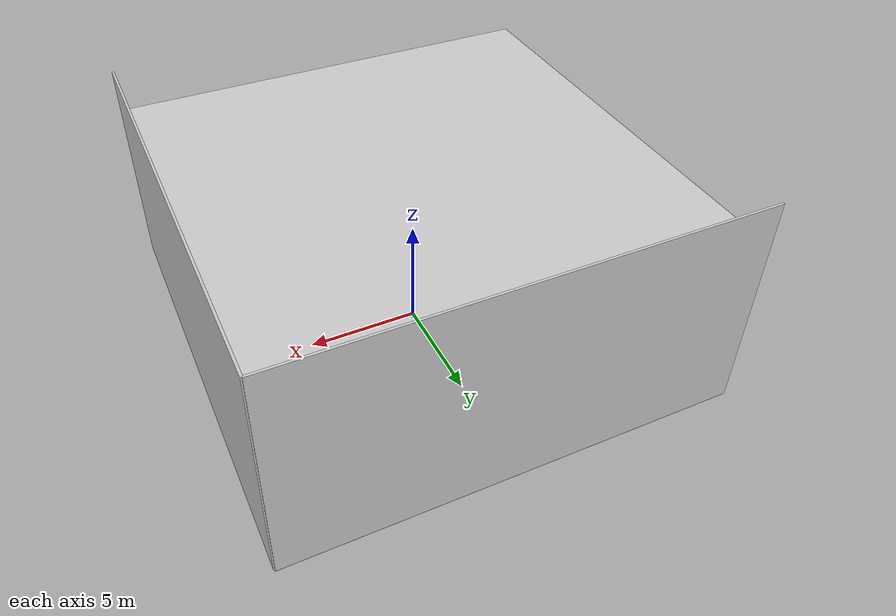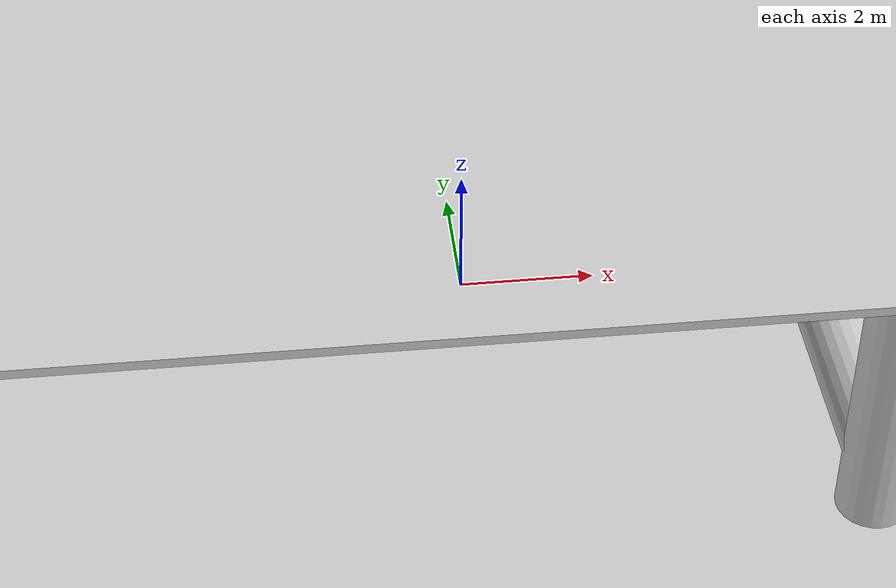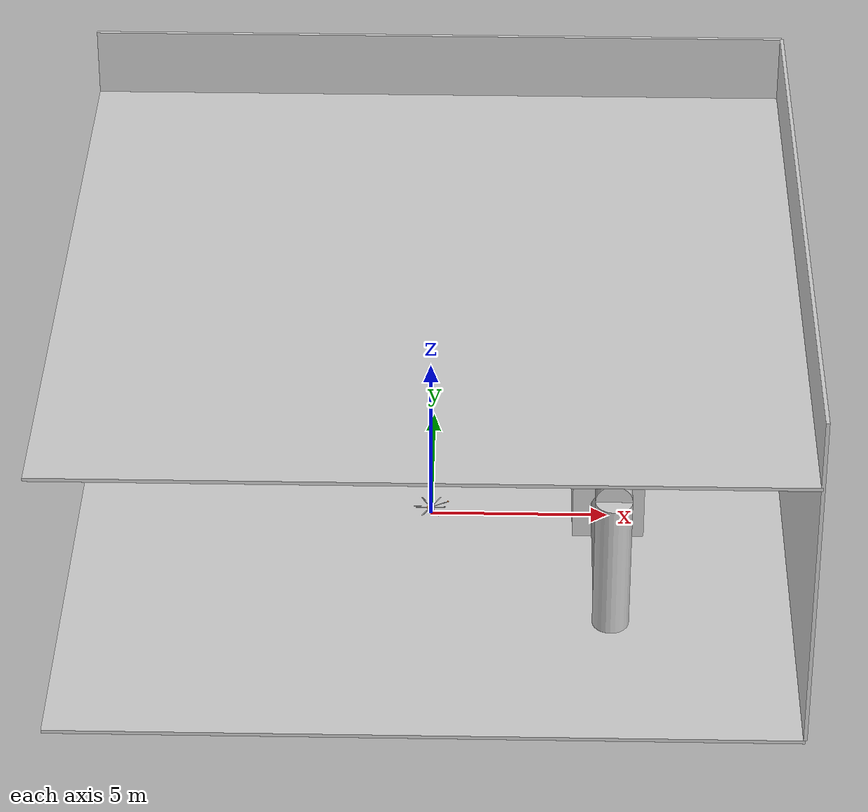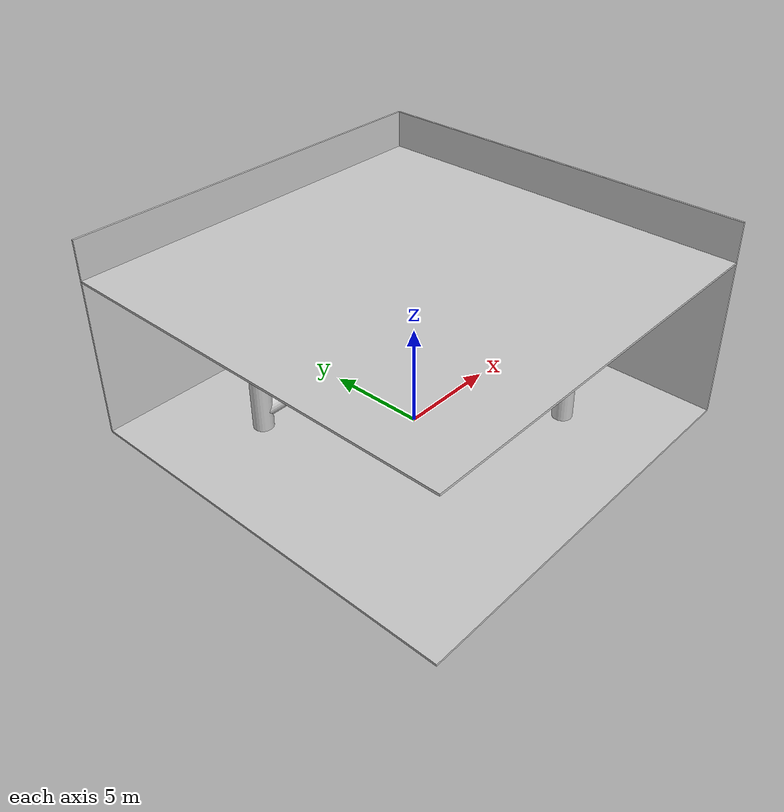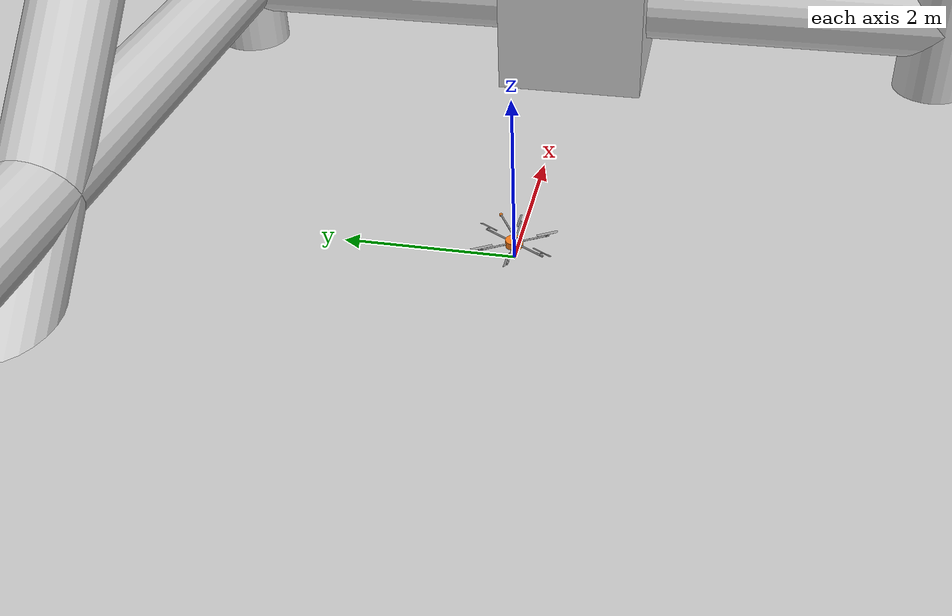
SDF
<?xml version="1.0"?>
<sdf version="1.5">
<world name="mrsim">
    <plugin filename="gz-sim-physics-system" name="gz::sim::systems::Physics"> </plugin>
    <plugin filename="gz-sim-scene-broadcaster-system" name="gz::sim::systems::SceneBroadcaster"> </plugin>
    <plugin filename="gz-sim-sensors-system" name="gz::sim::systems::Sensors">
        <render_engine>ogre2</render_engine>
    </plugin>
    <plugin filename="libgz-sim-imu-system" name="gz::sim::systems::Imu" />

    <physics type='ode'>
        <max_step_size>0.002000</max_step_size>
        <real_time_factor>1.000000</real_time_factor>
        <real_time_update_rate>500.000000</real_time_update_rate>
        <gravity>0 0 -9.81</gravity>
        <magnetic_field>23.816e-6 -0.41e-6 -39.829e-6</magnetic_field>
    </physics>

    <light type="directional" name="sun">
        <cast_shadows>false</cast_shadows>
        <pose>0 0 9.5 0 0 0</pose>
        <diffuse>0.8 0.8 0.8 1</diffuse>
        <specular>0.2 0.2 0.2 1</specular>
        <attenuation>
        <range>1000</range>
        <constant>0.9</constant>
        <linear>0.01</linear>
        <quadratic>0.001</quadratic>
        </attenuation>
        <direction>-0.5 0.1 -0.9</direction>
    </light>

    <model name="ground_plane">
        <static>true</static>
        <link name="link">
            <pose>0 0 -0.05 0 0 0</pose>
            <collision name="collision">
                <geometry>
                    <box>
                        <size>20 20 0.1</size>
                    </box>
                </geometry>
            </collision>
            <visual name="visual">
                <geometry>
                    <box>
                        <size>20 20 0.1</size>
                    </box>
                </geometry>
                <material>
                    <ambient>0.8 0.8 0.8 1</ambient>
                    <diffuse>0.8 0.8 0.8 1</diffuse>
                    <specular>0.8 0.8 0.8 1</specular>
                </material>
            </visual>
        </link>
    </model>

    <model name="textures">
        <static>true</static>
        <link name="wall_x">
            <pose>10 0 5 0 0 1.57</pose>
            <collision name="collision">
                <geometry>
                    <box>
                        <size>20 0.1 10.0</size>
                    </box>
                </geometry>
            </collision>
            <visual name="visual">
                <geometry>
                    <box>
                        <size>20 0.1 10.0</size>
                    </box>
                </geometry>
                <material>
                    <ambient>0.8 0.8 0.8 1</ambient>
                    <diffuse>0.8 0.8 0.8 1</diffuse>
                    <specular>0.8 0.8 0.8 1</specular>
                </material>
            </visual>
        </link>
        <link name="wall_y">
            <pose>0 10 5 0 0 0</pose>
            <collision name="collision">
                <geometry>
                    <box>
                        <size>20 0.1 10.0</size>
                    </box>
                </geometry>
            </collision>
            <visual name="visual">
                <geometry>
                    <box>
                        <size>20 0.1 10.0</size>
                    </box>
                </geometry>
                <material>
                    <ambient>0.8 0.8 0.8 1</ambient>
                    <diffuse>0.8 0.8 0.8 1</diffuse>
                    <specular>0.8 0.8 0.8 1</specular>
                </material>
            </visual>
        </link>
        <link name="roof">
            <pose>0 0 8 0 0 0</pose>
            <collision name="collision">
                <geometry>
                    <box>
                        <size>20 20 0.1</size>
                    </box>
                </geometry>
            </collision>
            <visual name="visual">
                <geometry>
                    <box>
                        <size>20 20 0.1</size>
                    </box>
                </geometry>
                <material>
                    <ambient>0.8 0.8 0.8 1</ambient>
                    <diffuse>0.8 0.8 0.8 1</diffuse>
                    <specular>0.8 0.8 0.8 1</specular>
                </material>
            </visual>
        </link>
        <link name="tpillar0">
            <pose>0 5 2 0 0.79 0</pose>
            <collision name="collision">
                <geometry>
                    <cylinder><radius>0.5</radius><length>10</length></cylinder>
                </geometry>
            </collision>
            <visual name="visual">
                <geometry>
                    <cylinder><radius>0.5</radius><length>10</length></cylinder>
                </geometry>
                <material>
                    <ambient>0.8 0.8 0.8 1</ambient>
                    <diffuse>0.8 0.8 0.8 1</diffuse>
                    <specular>0.8 0.8 0.8 1</specular>
                </material>
            </visual>
        </link>
        <link name="hpillar1">
            <pose>0 5 1 0 1.57 0</pose>
            <collision name="collision">
                <geometry>
                    <cylinder><radius>0.5</radius><length>10</length></cylinder>
                </geometry>
            </collision>
            <visual name="visual">
                <geometry>
                    <cylinder><radius>0.5</radius><length>10</length></cylinder>
                </geometry>
                <material>
                    <ambient>0.8 0.8 0.8 1</ambient>
                    <diffuse>0.8 0.8 0.8 1</diffuse>
                    <specular>0.8 0.8 0.8 1</specular>
                </material>
            </visual>
        </link>
        <link name="hpillar2">
            <pose>5 0 1 1.57 0 0</pose>
            <collision name="collision">
                <geometry>
                    <cylinder><radius>0.5</radius><length>10</length></cylinder>
                </geometry>
            </collision>
            <visual name="visual">
                <geometry>
                    <cylinder><radius>0.5</radius><length>10</length></cylinder>
                </geometry>
                <material>
                    <ambient>0.8 0.8 0.8 1</ambient>
                    <diffuse>0.8 0.8 0.8 1</diffuse>
                    <specular>0.8 0.8 0.8 1</specular>
                </material>
            </visual>
        </link>
        <link name="hpillar3">
            <pose>5 0 4 1.57 0 0</pose>
            <collision name="collision">
                <geometry>
                    <cylinder><radius>0.5</radius><length>10</length></cylinder>
                </geometry>
            </collision>
            <visual name="visual">
                <geometry>
                    <cylinder><radius>0.5</radius><length>10</length></cylinder>
                </geometry>
                <material>
                    <ambient>0.8 0.8 0.8 1</ambient>
                    <diffuse>0.8 0.8 0.8 1</diffuse>
                    <specular>0.8 0.8 0.8 1</specular>
                </material>
            </visual>
        </link>
        <link name="pillar1">
            <pose>5 5 2 0 0 0</pose>
            <collision name="collision">
                <geometry>
                    <cylinder><radius>0.5</radius><length>4</length></cylinder>
                </geometry>
            </collision>
            <visual name="visual">
                <geometry>
                    <cylinder><radius>0.5</radius><length>4</length></cylinder>
                </geometry>
                <material>
                    <ambient>0.8 0.8 0.8 1</ambient>
                    <diffuse>0.8 0.8 0.8 1</diffuse>
                    <specular>0.8 0.8 0.8 1</specular>
                </material>
            </visual>
        </link>
        <link name="pillar2">
            <pose>-5 5 3 0 0 0</pose>
            <collision name="collision">
                <geometry>
                    <cylinder><radius>0.5</radius><length>6</length></cylinder>
                </geometry>
            </collision>
            <visual name="visual">
                <geometry>
                    <cylinder><radius>0.5</radius><length>6</length></cylinder>
                </geometry>
                <material>
                    <ambient>0.8 0.8 0.8 1</ambient>
                    <diffuse>0.8 0.8 0.8 1</diffuse>
                    <specular>0.8 0.8 0.8 1</specular>
                </material>
            </visual>
        </link>
        <link name="pillar3">
            <pose>5 -5 2 0 0 0</pose>
            <collision name="collision">
                <geometry>
                    <cylinder><radius>0.5</radius><length>4</length></cylinder>
                </geometry>
            </collision>
            <visual name="visual">
                <geometry>
                    <cylinder><radius>0.5</radius><length>4</length></cylinder>
                </geometry>
                <material>
                    <ambient>0.8 0.8 0.8 1</ambient>
                    <diffuse>0.8 0.8 0.8 1</diffuse>
                    <specular>0.8 0.8 0.8 1</specular>
                </material>
            </visual>
        </link>
    </model>

    <model name="object">
        <link name="base">
                <pose>5 0 1 0 0 0</pose>
                <collision name="collision">
                    <geometry>
                        <box>
                            <size>2 2 2</size>
                        </box>
                    </geometry>
                </collision>
                <visual name="visual">
                    <geometry>
                        <box>
                            <size>2 2 2</size>
                        </box>
                        </geometry>
                    <material>
                        <ambient>0.8 0.8 0.8 1</ambient>
                        <diffuse>0.8 0.8 0.8 1</diffuse>
                        <specular>0.8 0.8 0.8 1</specular>
                    </material>
                </visual>
            </link>
    </model>

    <model name="TX">
        <pose>0 0 0.2 0 0 0</pose>
        <include>
            <uri>model://mrsim-tilthex</uri>
            <name>tx</name>
        </include>
        <include>
            <pose>0 0 0.075 0 0 0</pose>
            <uri>model://livox-mid360</uri>
            <name>livox</name>
        </include>
        <joint name="lidar_joint" type="fixed">
            <parent>tx::base</parent>
            <child>livox::base</child>
        </joint>
        <include>
            <pose>0.05 0 0.03 0 0 0.5236</pose>
            <uri>model://tilthex-ee</uri>
            <name>ee</name>
        </include>
        <joint name="ee_joint" type="fixed">
            <parent>tx::base</parent>
            <child>ee::base</child>
        </joint>
    </model>

    <plugin name="optitrack" filename="optitrack-gazebo-2.0.so">
        <hz>1000</hz>
        <port>1509</port>
        <publish>
            <link>TX::livox::base</link>
            <name>TX</name>
        </publish>
    </plugin>
</world>
</sdf>

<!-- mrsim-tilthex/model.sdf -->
<sdf version="1.5">
<model name="mrsim-tilthex">
    <link name="base">
        <inertial>
            <mass>2.5</mass>
            <inertia>
                <ixx>0.0115</ixx><ixy>0</ixy><ixz>0</ixz>
                <iyy>0.0115</iyy><iyz>0</iyz>
                <izz>0.0194</izz>
            </inertia>
        </inertial>

        <collision name="body">
            <geometry>
                <cylinder><radius>0.1</radius><length>0.08</length></cylinder>
            </geometry>
        </collision>

        <!-- three spheres to make contact stable -->
        <collision name="land_1">
            <pose>0.067 0 0 0 0 0</pose>
            <geometry>
                <sphere><radius>0.04</radius></sphere>
            </geometry>
        </collision>
        <collision name="land_2">
            <pose>-0.06 0.03 0 0 0 0</pose>
            <geometry>
                <sphere><radius>0.04</radius></sphere>
            </geometry>
        </collision>
        <collision name="land_3">
            <pose>-0.05 -0.03 0 0 0 0</pose>
            <geometry>
                <sphere><radius>0.04</radius></sphere>
            </geometry>
        </collision>

        <!-- contact for the arms -->
        <collision name="arm_1">
            <pose>0.21 0 0 0 1.5708 0</pose>
            <geometry>
                <cylinder><radius>0.01</radius><length>0.42</length></cylinder>
            </geometry>
        </collision>
        <collision name="arm_2">
            <pose>0.1050 0.1819 0 0 1.5708 1.0472</pose>
            <geometry>
                <cylinder><radius>0.01</radius><length>0.42</length></cylinder>
            </geometry>
        </collision>
        <collision name="arm_3">
            <pose>-0.1050 0.1819 0 0 1.5708 -1.0472</pose>
            <geometry>
                <cylinder><radius>0.01</radius><length>0.42</length></cylinder>
            </geometry>
        </collision>
        <collision name="arm_4">
            <pose>-0.21 0 0 0 1.5708 0</pose>
            <geometry>
                <cylinder><radius>0.01</radius><length>0.42</length></cylinder>
            </geometry>
        </collision>
        <collision name="arm_5">
            <pose>-0.1050 -0.1819 0 0 1.5708 1.0472</pose>
            <geometry>
                <cylinder><radius>0.01</radius><length>0.42</length></cylinder>
            </geometry>
        </collision>
        <collision name="arm_6">
            <pose>0.1050 -0.1819 0 0 1.5708 -1.0472</pose>
            <geometry>
                <cylinder><radius>0.01</radius><length>0.42</length></cylinder>
            </geometry>
        </collision>

        <visual name="body">
            <geometry>
                <cylinder><radius>0.1</radius><length>0.08</length></cylinder>
            </geometry>
            <material>
                <diffuse>1.0 0.5 0.1 1</diffuse>
            </material>
        </visual>
        <visual name="arm_1">
            <pose>0.21 0 0 0 1.5708 0</pose>
            <geometry>
                <cylinder><radius>0.01</radius><length>0.42</length></cylinder>
            </geometry>
            <material>
                <diffuse>0.6 0.6 0.6 1</diffuse>
            </material>
        </visual>
        <visual name="arm_2">
            <pose>0.1050 0.1819 0 0 1.5708 1.0472</pose>
            <geometry>
                <cylinder><radius>0.01</radius><length>0.42</length></cylinder>
            </geometry>
            <material>
                <diffuse>0.6 0.6 0.6 1</diffuse>
            </material>
        </visual>
        <visual name="arm_3">
            <pose>-0.1050 0.1819 0 0 1.5708 -1.0472</pose>
            <geometry>
                <cylinder><radius>0.01</radius><length>0.42</length></cylinder>
            </geometry>
            <material>
                <diffuse>0.6 0.6 0.6 1</diffuse>
            </material>
        </visual>
        <visual name="arm_4">
            <pose>-0.21 0 0 0 1.5708 0</pose>
            <geometry>
                <cylinder><radius>0.01</radius><length>0.42</length></cylinder>
            </geometry>
            <material>
                <diffuse>0.6 0.6 0.6 1</diffuse>
            </material>
        </visual>
        <visual name="arm_5">
            <pose>-0.1050 -0.1819 0 0 1.5708 1.0472</pose>
            <geometry>
                <cylinder><radius>0.01</radius><length>0.42</length></cylinder>
            </geometry>
            <material>
                <diffuse>0.6 0.6 0.6 1</diffuse>
            </material>
        </visual>
        <visual name="arm_6">
            <pose>0.1050 -0.1819 0 0 1.5708 -1.0472</pose>
            <geometry>
                <cylinder><radius>0.01</radius><length>0.42</length></cylinder>
            </geometry>
            <material>
                <diffuse>0.6 0.6 0.6 1</diffuse>
            </material>
        </visual>
    </link>

    <include>
        <uri>model://mrsim-rotor</uri>
        <name>rotor_1_link</name>
        <pose>0.39 0 0 -0.3491 0 0</pose>
    </include>
    <joint name="rotor_1_joint" type="revolute">
        <parent>base</parent>
        <child>rotor_1_link::propeller</child>
        <axis><xyz>0 0 1</xyz></axis>
    </joint>

    <include>
        <uri>model://mrsim-rotor</uri>
        <name>rotor_2_link</name>
        <pose>0.195 0.3377 0 0.3491 0 1.0472</pose>
    </include>
    <joint name="rotor_2_joint" type="revolute">
        <parent>base</parent>
        <child>rotor_2_link::propeller</child>
        <axis><xyz>0 0 1</xyz></axis>
    </joint>

    <include>
        <uri>model://mrsim-rotor</uri>
        <name>rotor_3_link</name>
        <pose>-0.195 0.3377 0 -0.3491 0 2.0944</pose>
    </include>
    <joint name="rotor_3_joint" type="revolute">
        <parent>base</parent>
        <child>rotor_3_link::propeller</child>
        <axis><xyz>0 0 1</xyz></axis>
    </joint>

    <include>
        <uri>model://mrsim-rotor</uri>
        <name>rotor_4_link</name>
        <pose>-0.39 0 0 -0.3491 0 0</pose>
    </include>
    <joint name="rotor_4_joint" type="revolute">
        <parent>base</parent>
        <child>rotor_4_link::propeller</child>
        <axis><xyz>0 0 1</xyz></axis>
    </joint>

    <include>
        <uri>model://mrsim-rotor</uri>
        <name>rotor_5_link</name>
        <pose>-0.195 -0.3377 0 -0.3491 0 -2.0944</pose>
    </include>
    <joint name="rotor_5_joint" type="revolute">
        <parent>base</parent>
        <child>rotor_5_link::propeller</child>
        <axis><xyz>0 0 1</xyz></axis>
    </joint>

    <include>
        <uri>model://mrsim-rotor</uri>
        <name>rotor_6_link</name>
        <pose>0.195 -0.3377 0 0.3491 0 -1.0472</pose>
    </include>
    <joint name="rotor_6_joint" type="revolute">
        <parent>base</parent>
        <child>rotor_6_link::propeller</child>
        <axis><xyz>0 0 1</xyz></axis>
    </joint>

    <plugin name="mrsim" filename="mrsim-gazebo.so">
        <link>base</link>
        <rotors>
        <noise>0.03</noise>
            <cf>11.4e-4</cf>
            <ct>2.4e-5</ct>
            <rotor><joint spin="cw">rotor_1_joint</joint></rotor>
            <rotor><joint spin="ccw">rotor_2_joint</joint></rotor>
            <rotor><joint spin="cw">rotor_3_joint</joint></rotor>
            <rotor><joint spin="ccw">rotor_4_joint</joint></rotor>
            <rotor><joint spin="cw">rotor_5_joint</joint></rotor>
            <rotor><joint spin="ccw">rotor_6_joint</joint></rotor>
        </rotors>
    </plugin>
</model>
</sdf>

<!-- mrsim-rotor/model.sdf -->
<sdf version="1.5">
  <model name="mrsim-rotor">
    <link name="propeller">
      <inertial>
        <mass>0.07</mass>
        <inertia>
          <ixx>4e-5</ixx><ixy>0</ixy><ixz>0</ixz>
          <iyy>4e-5</iyy><iyz>0</iyz>
          <izz>8e-5</izz>
        </inertia>
      </inertial>

      <collision name="collision">
        <pose>0 0 0.04 0 0 0</pose>
        <geometry>
          <cylinder><radius>0.127</radius><length>0.002</length></cylinder>
        </geometry>
      </collision>

      <visual name="motor">
        <pose>0 0 0.015 0 0 0</pose>
        <geometry>
          <cylinder><radius>0.015</radius><length>0.03</length></cylinder>
        </geometry>
        <material>
          <diffuse>0.6 0.6 0.6 1</diffuse>
        </material>
      </visual>

      <visual name="axle">
        <pose>0 0 0.035 0 0 0</pose>
        <geometry>
          <cylinder><radius>0.002</radius><length>0.01</length></cylinder>
        </geometry>
        <material>
          <diffuse>0.6 0.6 0.6 1</diffuse>
        </material>
      </visual>

      <visual name="blade">
        <pose>0 0 0.04 0 0 0</pose>
        <geometry>
          <box><size>0.25 0.03 0.002</size></box>
        </geometry>
        <material>
          <diffuse>0.6 0.6 0.6 1</diffuse>
        </material>
      </visual>
    </link>
  </model>
</sdf>

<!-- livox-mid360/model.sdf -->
<sdf version="1.9">
<model name="livox_mid360">
    <link name="base">
        <inertial>
            <mass>0.265</mass>
            <inertia>
                <ixx>0.000149</ixx>
                <iyy>0.000149</iyy>
                <izz>0.000140</izz>
                <ixy>0</ixy>
                <ixz>0</ixz>
                <iyz>0</iyz>
            </inertia>
        </inertial>

        <visual name="visual">
            <pose>0 0 -0.03 0 0 0</pose>
            <geometry>
                <cylinder>
                    <radius>0.0325</radius>
                    <length>0.06</length>
                </cylinder>
            </geometry>
            <material>
                <diffuse>0.1 0.3 0.8 1</diffuse>
            </material>
        </visual>

        <collision name="collision">
            <pose>0 0 -0.03 0 0 0</pose>
            <geometry>
                <cylinder>
                    <radius>0.0325</radius>
                    <length>0.06</length>
                </cylinder>
            </geometry>
        </collision>

        <sensor name="livox_lidar" type="gpu_lidar">
            <pose>0 0 0 0 0 0</pose>
            <topic>/livox/lidar</topic>
            <update_rate>10</update_rate>
            <always_on>true</always_on>
            <visualize>false</visualize>
            <ray>
                <scan>
                    <horizontal>
                        <samples>500</samples>
                        <resolution>1</resolution>
                        <min_angle>-3.1415926</min_angle>
                        <max_angle>3.1415926</max_angle>
                    </horizontal>
                    <vertical>
                        <samples>40</samples>
                        <resolution>1</resolution>
                        <min_angle>-0.122173</min_angle>
                        <max_angle>0.907571</max_angle>
                    </vertical>
                </scan>
                <range>
                    <min>0.25</min>
                    <max>100.0</max>
                    <resolution>0.01</resolution>
                </range>
                <noise>
                    <type>gaussian</type>
                    <mean>0.0</mean>
                    <stddev>0.02</stddev>
                </noise>
            </ray>
        </sensor>

        <sensor name="livox_imu" type="imu">
            <pose>0.011 0.02329 -0.04412 0 0 0</pose>
            <topic>/livox/imu</topic>
            <update_rate>200</update_rate>
            <always_on>true</always_on>
            <visualize>false</visualize>
            <imu>
                <angular_velocity>
                    <x>
                        <noise type="gaussian">
                            <mean>0.0</mean>
                            <stddev>0.00111</stddev>
                            <bias_mean>0.0</bias_mean>
                            <bias_stddev>0.0001</bias_stddev>
                        </noise>
                    </x>
                    <y>
                        <noise type="gaussian">
                            <mean>0.0</mean>
                            <stddev>0.00111</stddev>
                            <bias_mean>0.0</bias_mean>
                            <bias_stddev>0.0001</bias_stddev>
                        </noise>
                        </y>
                    <z>
                        <noise type="gaussian">
                            <mean>0.0</mean>
                            <stddev>0.00111</stddev>
                            <bias_mean>0.0</bias_mean>
                            <bias_stddev>0.0001</bias_stddev>
                        </noise>
                    </z>
                </angular_velocity>
                <linear_acceleration>
                    <x>
                        <noise type="gaussian">
                            <mean>0.0</mean>
                            <stddev>0.01387</stddev>
                            <bias_mean>0.0</bias_mean>
                            <bias_stddev>0.001</bias_stddev>
                        </noise>
                    </x>
                    <y>
                        <noise type="gaussian">
                            <mean>0.0</mean>
                            <stddev>0.01387</stddev>
                            <bias_mean>0.0</bias_mean>
                            <bias_stddev>0.001</bias_stddev>
                        </noise>
                    </y>
                    <z>
                        <noise type="gaussian">
                            <mean>0.0</mean>
                            <stddev>0.01387</stddev>
                            <bias_mean>0.0</bias_mean>
                            <bias_stddev>0.001</bias_stddev>
                        </noise>
                    </z>
                </linear_acceleration>
            </imu>
        </sensor>
    </link>
</model>
</sdf>

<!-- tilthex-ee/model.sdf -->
<sdf version="1.5">
<model name="tilthex-ee">
    <link name="base">
        <inertial>
            <mass>0.05</mass>
            <inertia>
                <ixx>0.0002</ixx><ixy>0</ixy><ixz>0</ixz>
                <iyy>0.0002</iyy><iyz>0</iyz>
                <izz>0.0002</izz>
            </inertia>
        </inertial>
        <visual name="arm_ee">
            <pose>0.25 0 0 0 1.5708 0</pose>
            <geometry>
                <cylinder><radius>0.01</radius><length>0.5</length></cylinder>
            </geometry>
            <material>
                <diffuse>0.6 0.6 0.6 1</diffuse>
            </material>
        </visual>
        <collision name="arm_ee">
            <pose>0.25 0 0 0 1.5708 0</pose>
            <geometry>
                <cylinder><radius>0.01</radius><length>0.5</length></cylinder>
            </geometry>
        </collision>

        <visual name="ee">
            <pose>0.5 0 0 0 0 0</pose>
            <geometry>
                <sphere><radius>0.02</radius></sphere>
            </geometry>
            <material>
                <diffuse>1.0 0.5 0.1 1</diffuse>
            </material>
        </visual>
        <collision name="ee_1">
            <pose>0.5 0 0.040 0 0 0</pose>
            <geometry>
                <sphere><radius>0.02</radius></sphere>
            </geometry>
        </collision>
        <collision name="ee_2">
            <pose>0.5 0.028 -0.028 0 0 0</pose>
            <geometry>
                <sphere><radius>0.02</radius></sphere>
            </geometry>
        </collision>
        <collision name="ee_3">
            <pose>0.5 -0.028 -0.028 0 0 0</pose>
            <geometry>
                <sphere><radius>0.02</radius></sphere>
            </geometry>
        </collision>
    </link>
</model>
</sdf>
